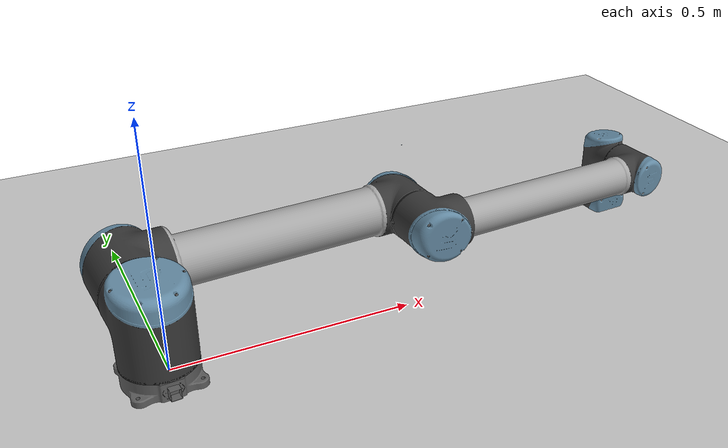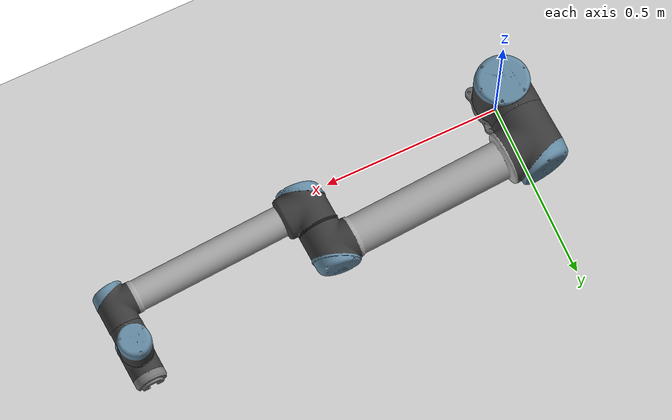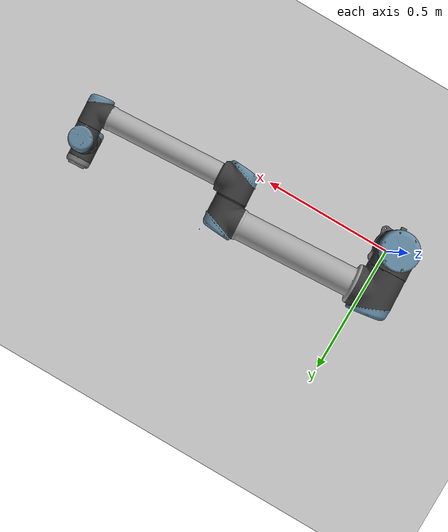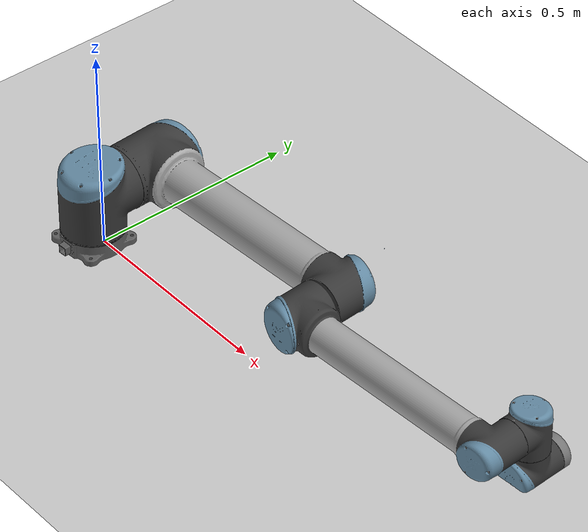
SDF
<sdf version="1.7">
 <world name="default">
  <light name="sun" type="directional">
   <pose>0 0 10 0 -0 0</pose>
   <diffuse>0.8 0.8 0.8 1</diffuse>
   <specular>0.2 0.2 0.2 1</specular>
   <attenuation>
    <range>1000</range>
    <constant>0.9</constant>
    <linear>0.01</linear>
    <quadratic>0.001</quadratic>
   </attenuation>
   <direction>-0.5 0.1 -0.9</direction>
   <spot><inner_angle>0</inner_angle><outer_angle>0</outer_angle><falloff>0</falloff></spot>
  </light>
  <model name="ground_plane">
   <static>1</static>
   <link name="link">
    <collision name="collision">
     <geometry><plane><normal>0 0 1</normal><size>100 100</size></plane></geometry>
     <surface>
      <contact><collide_bitmask>65535</collide_bitmask></contact>
      <friction><ode><mu>100</mu><mu2>50</mu2></ode></friction>
     </surface>
    </collision>
    <visual name="visual">
     <cast_shadows>0</cast_shadows>
     <geometry><plane><normal>0 0 1</normal><size>100 100</size></plane></geometry>
     <material>
      <script><uri>file://media/materials/scripts/gazebo.material</uri><name>Gazebo/Grey</name></script>
     </material>
    </visual>
   </link>
  </model>
  <gravity>0 0 -9.8</gravity>
  <magnetic_field>6e-06 2.3e-05 -4.2e-05</magnetic_field>
  <atmosphere type="adiabatic"/>
  <physics type="ode">
   <max_step_size>0.001</max_step_size>
   <real_time_factor>1</real_time_factor>
   <real_time_update_rate>1000</real_time_update_rate>
  </physics>
  <scene><ambient>0.4 0.4 0.4 1</ambient><background>0.7 0.7 0.7 1</background><shadows>1</shadows></scene>
  <audio><device>default</device></audio>
  <spherical_coordinates>
   <surface_model>EARTH_WGS84</surface_model>
   <latitude_deg>0</latitude_deg>
   <longitude_deg>0</longitude_deg>
   <elevation>0</elevation>
   <heading_deg>0</heading_deg>
  </spherical_coordinates>
  <model name="ur10">
   <link name="base">
    <inertial>
     <mass>4</mass>
     <inertia>
      <ixx>0.00610633</ixx>
      <ixy>0</ixy>
      <ixz>0</ixz>
      <iyy>0.00610633</iyy>
      <iyz>0</iyz>
      <izz>0.01125</izz>
     </inertia>
    </inertial>
    <collision name="collision">
     <pose>0 0 0.019 0 -0 0</pose>
     <geometry><cylinder><radius>0.075</radius><length>0.038</length></cylinder></geometry>
    </collision>
    <visual name="visual"><geometry><mesh><uri>model://ur10/meshes/base.dae</uri></mesh></geometry></visual>
   </link>
   <link name="shoulder">
    <pose>0 0 0.1273 0 -0 0</pose>
    <inertial>
     <mass>7.778</mass>
     <inertia>
      <ixx>0.0314743</ixx>
      <ixy>0</ixy>
      <ixz>0</ixz>
      <iyy>0.0314743</iyy>
      <iyz>0</iyz>
      <izz>0.0218756</izz>
     </inertia>
    </inertial>
    <collision name="collision">
     <geometry><cylinder><radius>0.075</radius><length>0.177</length></cylinder></geometry>
    </collision>
    <visual name="visual"><geometry><mesh><uri>model://ur10/meshes/shoulder.dae</uri></mesh></geometry></visual>
   </link>
   <link name="upper_arm">
    <pose>0 0.220941 0.1273 3.14159 1.57079 3.14159</pose>
    <inertial>
     <pose>0 0 0.306 0 -0 0</pose>
     <mass>12.93</mass>
     <inertia>
      <ixx>0.421754</ixx>
      <ixy>0</ixy>
      <ixz>0</ixz>
      <iyy>0.421754</iyy>
      <iyz>0</iyz>
      <izz>0.0363656</izz>
     </inertia>
    </inertial>
    <collision name="collision1">
     <pose>0 -0.045 0 1.5707 -0 0</pose>
     <geometry><cylinder><radius>0.075</radius><length>0.177</length></cylinder></geometry>
    </collision>
    <collision name="collision2">
     <pose>0 -0.0436 0.32 0 -0 1.5707</pose>
     <geometry><cylinder><radius>0.058</radius><length>0.461</length></cylinder></geometry>
    </collision>
    <collision name="collision3">
     <pose>0 -0.04 0.613 1.5707 -0 0</pose>
     <geometry><cylinder><radius>0.058</radius><length>0.129</length></cylinder></geometry>
    </collision>
    <visual name="visual"><geometry><mesh><uri>model://ur10/meshes/upperarm.dae</uri></mesh></geometry></visual>
   </link>
   <link name="forearm">
    <pose>0.612 0.049041 0.1273 3.14159 1.57079 3.14159</pose>
    <inertial>
     <pose>0 0 0.28615 0 -0 0</pose>
     <mass>3.87</mass>
     <inertia>
      <ixx>0.11107</ixx>
      <ixy>0</ixy>
      <ixz>0</ixz>
      <iyy>0.11107</iyy>
      <iyz>0</iyz>
      <izz>0.0108844</izz>
     </inertia>
    </inertial>
    <collision name="collision1">
     <pose>0 0 0.001 1.5707 -0 0</pose>
     <geometry><cylinder><radius>0.058</radius><length>0.136</length></cylinder></geometry>
    </collision>
    <collision name="collision2">
     <pose>0 0 0.305 0 -0 1.5707</pose>
     <geometry><cylinder><radius>0.045</radius><length>0.447</length></cylinder></geometry>
    </collision>
    <collision name="collision3">
     <pose>0 0.001 0.5735 1.5707 -0 0</pose>
     <geometry><cylinder><radius>0.045</radius><length>0.119</length></cylinder></geometry>
    </collision>
    <visual name="visua"><geometry><mesh><uri>model://ur10/meshes/forearm.dae</uri></mesh></geometry></visual>
   </link>
   <link name="wrist_1">
    <pose>1.1843 0.049041 0.1273 3.14159 -0 3.14159</pose>
    <inertial>
     <mass>1.96</mass>
     <inertia>
      <ixx>0.00510825</ixx>
      <ixy>0</ixy>
      <ixz>0</ixz>
      <iyy>0.00510825</iyy>
      <iyz>0</iyz>
      <izz>0.0055125</izz>
     </inertia>
    </inertial>
    <collision name="collision">
     <pose>0 0.115 0.0025 0 -0 0</pose>
     <geometry><cylinder><radius>0.0455</radius><length>0.119</length></cylinder></geometry>
    </collision>
    <visual name="visual"><geometry><mesh><uri>model://ur10/meshes/wrist1.dae</uri></mesh></geometry></visual>
   </link>
   <link name="wrist_2">
    <pose>1.1843 0.163941 0.1273 3.14159 -0 3.14159</pose>
    <inertial>
     <mass>1.96</mass>
     <inertia>
      <ixx>0.00510825</ixx>
      <ixy>0</ixy>
      <ixz>0</ixz>
      <iyy>0.00510825</iyy>
      <iyz>0</iyz>
      <izz>0.0055125</izz>
     </inertia>
    </inertial>
    <collision name="collision">
     <pose>0 0.002 0.11659 1.5707 -0 0</pose>
     <geometry><cylinder><radius>0.0455</radius><length>0.119</length></cylinder></geometry>
    </collision>
    <visual name="visual"><geometry><mesh><uri>model://ur10/meshes/wrist2.dae</uri></mesh></geometry></visual>
   </link>
   <link name="wrist_3">
    <pose>1.1843 0.163941 0.0116 3.14159 -0 3.14159</pose>
    <inertial>
     <mass>0.202</mass>
     <inertia>
      <ixx>0.000526462</ixx>
      <ixy>0</ixy>
      <ixz>0</ixz>
      <iyy>0.000526462</iyy>
      <iyz>0</iyz>
      <izz>0.000568125</izz>
     </inertia>
    </inertial>
    <collision name="collision">
     <pose>0 0.0765 0 1.5707 -0 0</pose>
     <geometry><cylinder><radius>0.045</radius><length>0.031</length></cylinder></geometry>
    </collision>
    <visual name="visual"><geometry><mesh><uri>model://ur10/meshes/wrist3.dae</uri></mesh></geometry></visual>
   </link>
   <joint name="shoulder_pan" type="revolute">
    <child>shoulder</child>
    <parent>base</parent>
    <axis>
     <xyz expressed_in="__model__">0 0 1</xyz>
     <limit><lower>-6.28319</lower><upper>6.28319</upper><effort>330</effort><velocity>2.16</velocity></limit>
     <dynamics><spring_reference>0</spring_reference><spring_stiffness>0</spring_stiffness></dynamics>
    </axis>
   </joint>
   <joint name="shoulder_lift" type="revolute">
    <child>upper_arm</child>
    <parent>shoulder</parent>
    <axis>
     <xyz expressed_in="__model__">0 1 0</xyz>
     <limit><lower>-6.28319</lower><upper>6.28319</upper><effort>330</effort><velocity>2.16</velocity></limit>
     <dynamics><spring_reference>0</spring_reference><spring_stiffness>0</spring_stiffness></dynamics>
    </axis>
   </joint>
   <joint name="elbow" type="revolute">
    <child>forearm</child>
    <parent>upper_arm</parent>
    <axis>
     <xyz expressed_in="__model__">0 1 0</xyz>
     <limit><lower>-6.28319</lower><upper>6.28319</upper><effort>150</effort><velocity>3.15</velocity></limit>
     <dynamics><spring_reference>0</spring_reference><spring_stiffness>0</spring_stiffness></dynamics>
    </axis>
   </joint>
   <joint name="wrist_1" type="revolute">
    <child>wrist_1</child>
    <parent>forearm</parent>
    <axis>
     <xyz expressed_in="__model__">0 1 0</xyz>
     <limit><lower>-6.28319</lower><upper>6.28319</upper><effort>54</effort><velocity>3.2</velocity></limit>
     <dynamics><spring_reference>0</spring_reference><spring_stiffness>0</spring_stiffness></dynamics>
    </axis>
   </joint>
   <joint name="wrist_2" type="revolute">
    <child>wrist_2</child>
    <parent>wrist_1</parent>
    <axis>
     <xyz expressed_in="__model__">0 0 -1</xyz>
     <limit><lower>-6.28319</lower><upper>6.28319</upper><effort>54</effort><velocity>3.2</velocity></limit>
     <dynamics><spring_reference>0</spring_reference><spring_stiffness>0</spring_stiffness></dynamics>
    </axis>
   </joint>
   <joint name="wrist_3" type="revolute">
    <child>wrist_3</child>
    <parent>wrist_2</parent>
    <axis>
     <xyz expressed_in="__model__">0 1 0</xyz>
     <limit><lower>-6.28319</lower><upper>6.28319</upper><effort>54</effort><velocity>3.2</velocity></limit>
     <dynamics><spring_reference>0</spring_reference><spring_stiffness>0</spring_stiffness></dynamics>
    </axis>
   </joint>
   <pose>-0.018231 -0.014087 -1e-06 8e-06 5e-06 0.057776</pose>
  </model>
 </world>
</sdf>
